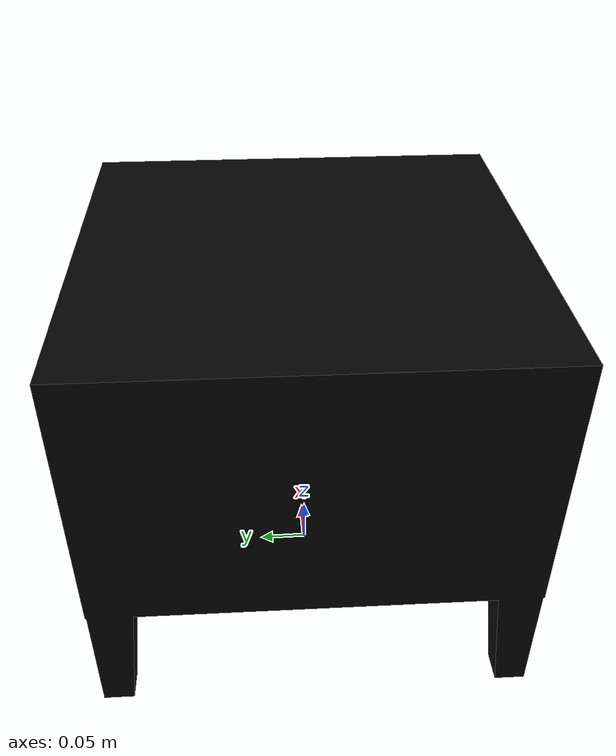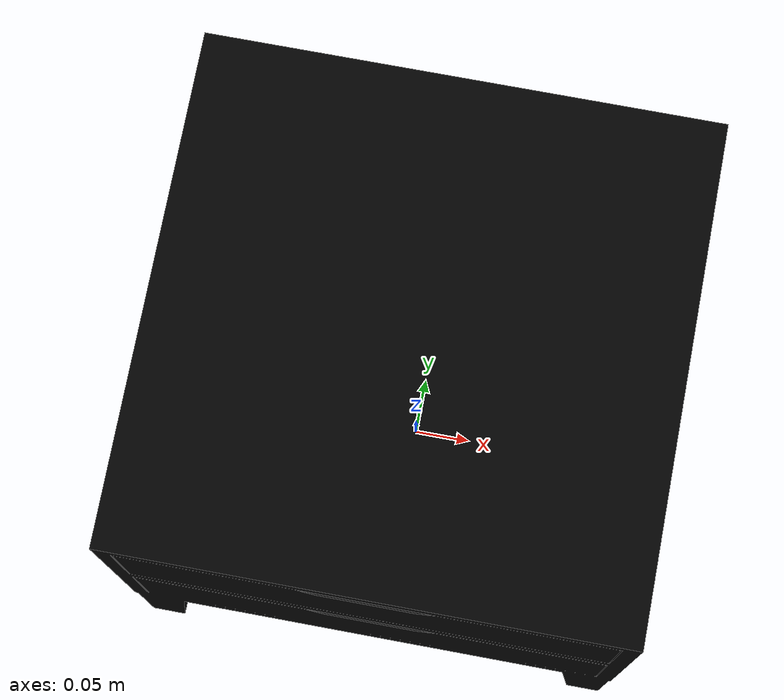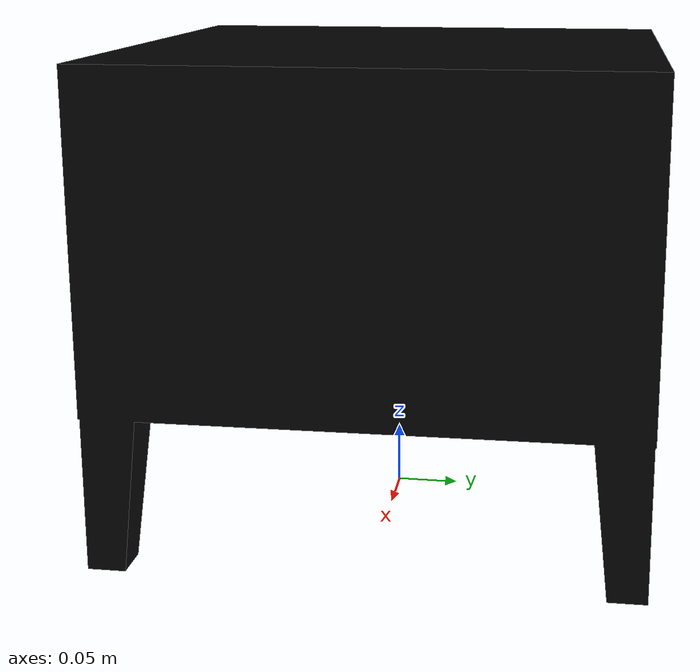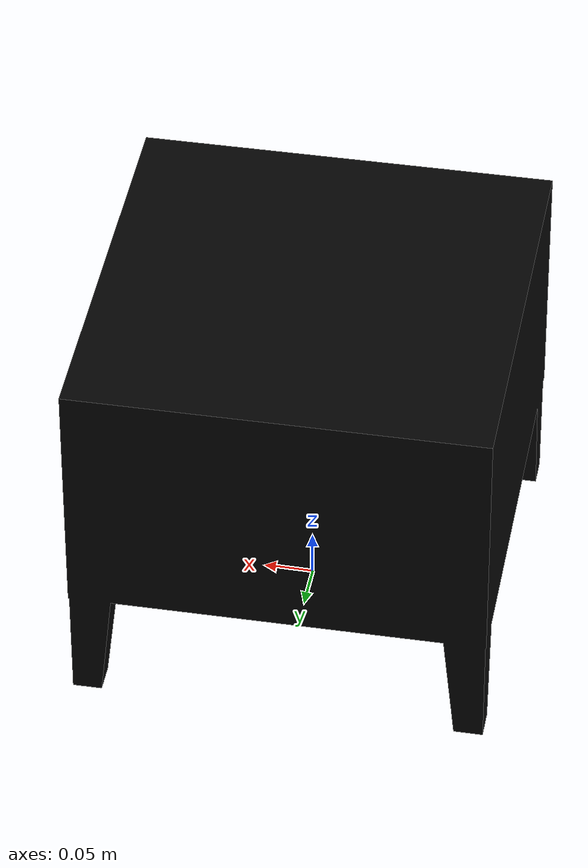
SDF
<?xml version='1.0'?>
<sdf version="1.4">
	<model name="night_stand">
		<static>1</static>
		<link name="link">
			<visual name="mesh">
				<geometry>
					<mesh>
						<uri>model://meshes/night_stand.dae</uri>
					</mesh>
				</geometry>
			</visual>
			<collision name="box">
				<pose>0 0 0.14 0 0 0</pose>
				<geometry>
					<box>
						<size>0.42 0.42 0.38</size>
					</box>
				</geometry>
			</collision>
		</link>
	</model>
</sdf>
